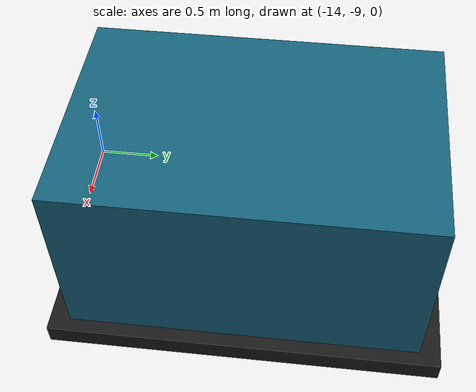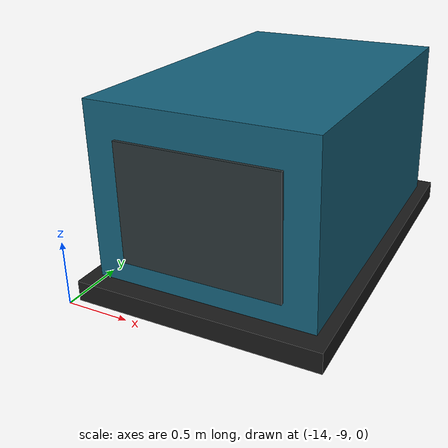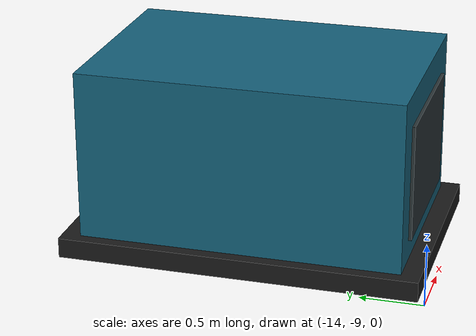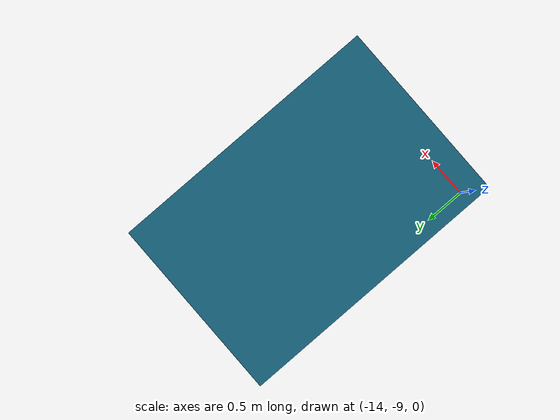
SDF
<sdf version="1.9">
 <world name="substation_complex">
  <model name="west_switchgear_01">
   <static>true</static>
   <pose>-13 -7.5 0 0 0 0</pose>
   <link name="link">
    <collision name="collision">
     <pose>0 0 0.8 0 0 0</pose>
     <geometry><box><size>1.84 2.76 1.6</size></box></geometry>
    </collision>
    <visual name="base">
     <pose>0 0 0.08 0 0 0</pose>
     <geometry><box><size>1.92 2.88 0.16</size></box></geometry>
     <material>
      <ambient>0.10 0.10 0.10 1</ambient>
      <diffuse>0.10 0.10 0.10 1</diffuse>
      <specular>0.08 0.08 0.08 1</specular>
     </material>
     <plugin filename="gz-sim-label-system" name="gz::sim::systems::Label"><label>118</label></plugin>
    </visual>
    <visual name="body">
     <pose>0 0 0.8 0 0 0</pose>
     <geometry><box><size>1.72 2.58 1.44</size></box></geometry>
     <material>
      <ambient>0.08 0.38 0.48 1</ambient>
      <diffuse>0.08 0.38 0.48 1</diffuse>
      <specular>0.08 0.08 0.08 1</specular>
     </material>
     <plugin filename="gz-sim-label-system" name="gz::sim::systems::Label"><label>118</label></plugin>
    </visual>
    <visual name="front_panel">
     <pose>0 -1.305 0.8 0 0 0</pose>
     <geometry><box><size>1.24 0.025 0.928</size></box></geometry>
     <material>
      <ambient>0.16 0.20 0.21 1</ambient>
      <diffuse>0.16 0.20 0.21 1</diffuse>
      <specular>0.08 0.08 0.08 1</specular>
     </material>
     <plugin filename="gz-sim-label-system" name="gz::sim::systems::Label"><label>118</label></plugin>
    </visual>
   </link>
  </model>
 </world>
</sdf>
